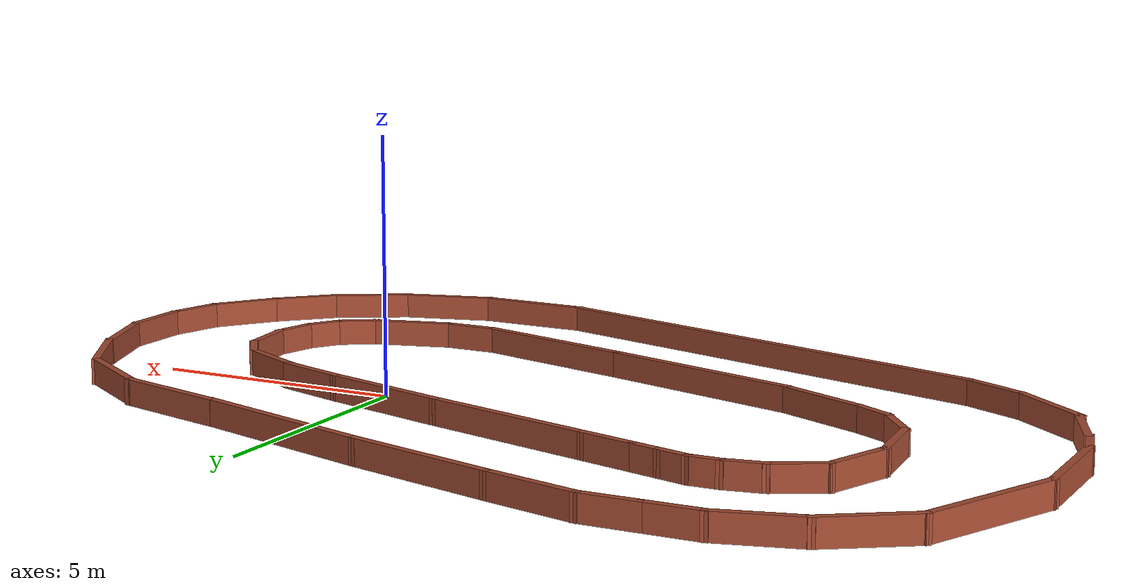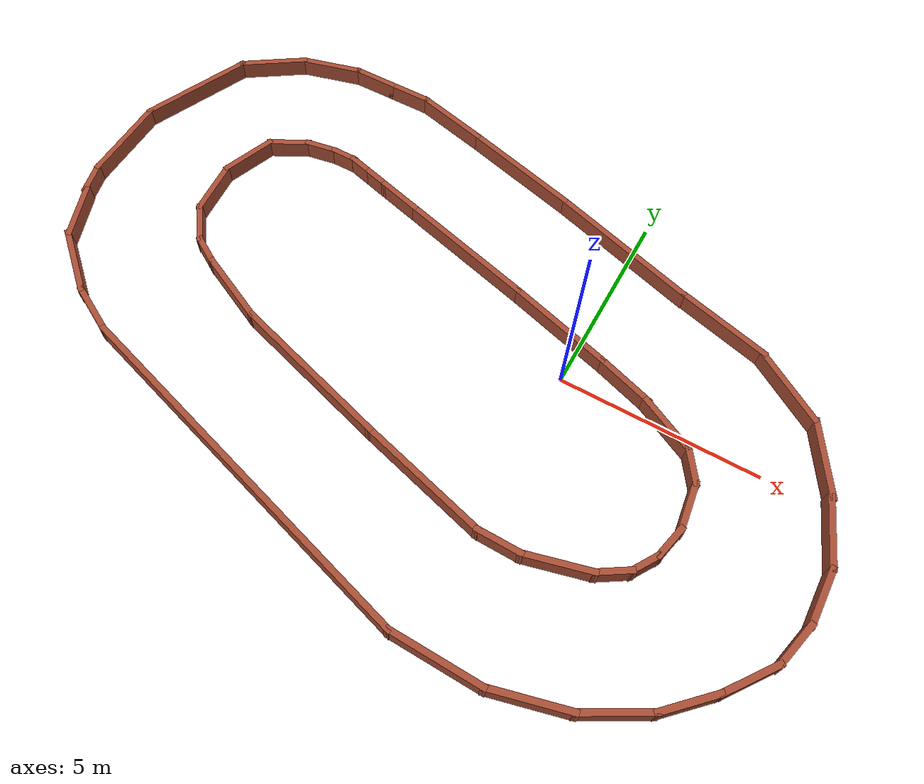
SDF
<?xml version='1.0'?>
<sdf version='1.6'>
  <model name='Race'>
    <pose frame=''>-3.18843 -0.711031 0 0 -0 0</pose>
    <link name='Wall_100'>
      <collision name='Wall_100_Collision'>
        <geometry>
          <box>
            <size>3.75 0.15 0.5</size>
          </box>
        </geometry>
        <pose frame=''>0 0 0.25 0 -0 0</pose>
      </collision>
      <visual name='Wall_100_Visual'>
        <pose frame=''>0 0 0.25 0 -0 0</pose>
        <geometry>
          <box>
            <size>3.75 0.15 0.5</size>
          </box>
        </geometry>
        <material>
          <script>
            <uri>file://media/materials/scripts/gazebo.material</uri>
            <name>Gazebo/Bricks</name>
          </script>
          <ambient>1 1 1 1</ambient>
        </material>
      </visual>
      <pose frame=''>-0.488069 2.63903 0 0 -0 2.8797</pose>
    </link>
    <link name='Wall_101'>
      <collision name='Wall_101_Collision'>
        <geometry>
          <box>
            <size>1.25 0.15 0.5</size>
          </box>
        </geometry>
        <pose frame=''>0 0 0.25 0 -0 0</pose>
      </collision>
      <visual name='Wall_101_Visual'>
        <pose frame=''>0 0 0.25 0 -0 0</pose>
        <geometry>
          <box>
            <size>1.25 0.15 0.5</size>
          </box>
        </geometry>
        <material>
          <script>
            <uri>file://media/materials/scripts/gazebo.material</uri>
            <name>Gazebo/Bricks</name>
          </script>
          <ambient>1 1 1 1</ambient>
        </material>
      </visual>
      <pose frame=''>-2.75807 3.24703 0 0 -0 2.88052</pose>
    </link>
    <link name='Wall_102'>
      <collision name='Wall_102_Collision'>
        <geometry>
          <box>
            <size>0.75 0.15 0.5</size>
          </box>
        </geometry>
        <pose frame=''>0 0 0.25 0 -0 0</pose>
      </collision>
      <visual name='Wall_102_Visual'>
        <pose frame=''>0 0 0.25 0 -0 0</pose>
        <geometry>
          <box>
            <size>0.75 0.15 0.5</size>
          </box>
        </geometry>
        <material>
          <script>
            <uri>file://media/materials/scripts/gazebo.material</uri>
            <name>Gazebo/Bricks</name>
          </script>
          <ambient>1 1 1 1</ambient>
        </material>
      </visual>
      <pose frame=''>-3.57907 3.46703 0 0 -0 2.87841</pose>
    </link>
    <link name='Wall_103'>
      <collision name='Wall_103_Collision'>
        <geometry>
          <box>
            <size>0.75 0.15 0.5</size>
          </box>
        </geometry>
        <pose frame=''>0 0 0.25 0 -0 0</pose>
      </collision>
      <visual name='Wall_103_Visual'>
        <pose frame=''>0 0 0.25 0 -0 0</pose>
        <geometry>
          <box>
            <size>0.75 0.15 0.5</size>
          </box>
        </geometry>
        <material>
          <script>
            <uri>file://media/materials/scripts/gazebo.material</uri>
            <name>Gazebo/Bricks</name>
          </script>
          <ambient>1 1 1 1</ambient>
        </material>
      </visual>
      <pose frame=''>-4.15857 3.62253 0 0 -0 2.88045</pose>
    </link>
    <link name='Wall_104'>
      <collision name='Wall_104_Collision'>
        <geometry>
          <box>
            <size>0.75 0.15 0.5</size>
          </box>
        </geometry>
        <pose frame=''>0 0 0.25 0 -0 0</pose>
      </collision>
      <visual name='Wall_104_Visual'>
        <pose frame=''>0 0 0.25 0 -0 0</pose>
        <geometry>
          <box>
            <size>0.75 0.15 0.5</size>
          </box>
        </geometry>
        <material>
          <script>
            <uri>file://media/materials/scripts/gazebo.material</uri>
            <name>Gazebo/Bricks</name>
          </script>
          <ambient>1 1 1 1</ambient>
        </material>
      </visual>
      <pose frame=''>-4.74857 3.70003 0 0 -0 3.14159</pose>
    </link>
    <link name='Wall_105'>
      <collision name='Wall_105_Collision'>
        <geometry>
          <box>
            <size>0.91106 0.15 0.5</size>
          </box>
        </geometry>
        <pose frame=''>0 0 0.25 0 -0 0</pose>
      </collision>
      <visual name='Wall_105_Visual'>
        <pose frame=''>0 0 0.25 0 -0 0</pose>
        <geometry>
          <box>
            <size>0.91106 0.15 0.5</size>
          </box>
        </geometry>
        <material>
          <script>
            <uri>file://media/materials/scripts/gazebo.material</uri>
            <name>Gazebo/Bricks</name>
          </script>
          <ambient>1 1 1 1</ambient>
        </material>
      </visual>
      <pose frame=''>-5.42357 3.63453 0 0 0 -2.96867</pose>
    </link>
    <link name='Wall_38'>
      <collision name='Wall_38_Collision'>
        <geometry>
          <box>
            <size>1.25 0.15 0.5</size>
          </box>
        </geometry>
        <pose frame=''>0 0 0.25 0 -0 0</pose>
      </collision>
      <visual name='Wall_38_Visual'>
        <pose frame=''>0 0 0.25 0 -0 0</pose>
        <geometry>
          <box>
            <size>1.25 0.15 0.5</size>
          </box>
        </geometry>
        <material>
          <script>
            <uri>file://media/materials/scripts/gazebo.material</uri>
            <name>Gazebo/Bricks</name>
          </script>
          <ambient>1 1 1 1</ambient>
        </material>
      </visual>
      <pose frame=''>10.0479 -2.61447 0 0 -0 1.30885</pose>
    </link>
    <link name='Wall_40'>
      <collision name='Wall_40_Collision'>
        <geometry>
          <box>
            <size>1.5 0.15 0.5</size>
          </box>
        </geometry>
        <pose frame=''>0 0 0.25 0 -0 0</pose>
      </collision>
      <visual name='Wall_40_Visual'>
        <pose frame=''>0 0 0.25 0 -0 0</pose>
        <geometry>
          <box>
            <size>1.5 0.15 0.5</size>
          </box>
        </geometry>
        <material>
          <script>
            <uri>file://media/materials/scripts/gazebo.material</uri>
            <name>Gazebo/Bricks</name>
          </script>
          <ambient>1 1 1 1</ambient>
        </material>
      </visual>
      <pose frame=''>10.1904 -1.40797 0 0 -0 1.5708</pose>
    </link>
    <link name='Wall_41'>
      <collision name='Wall_41_Collision'>
        <geometry>
          <box>
            <size>1.78576 0.15 0.5</size>
          </box>
        </geometry>
        <pose frame=''>0 0 0.25 0 -0 0</pose>
      </collision>
      <visual name='Wall_41_Visual'>
        <pose frame=''>0 0 0.25 0 -0 0</pose>
        <geometry>
          <box>
            <size>1.78576 0.15 0.5</size>
          </box>
        </geometry>
        <material>
          <script>
            <uri>file://media/materials/scripts/gazebo.material</uri>
            <name>Gazebo/Bricks</name>
          </script>
          <ambient>1 1 1 1</ambient>
        </material>
      </visual>
      <pose frame=''>9.91575 0.037406 0 0 -0 1.9133</pose>
    </link>
    <link name='Wall_42'>
      <collision name='Wall_42_Collision'>
        <geometry>
          <box>
            <size>1.99987 0.15 0.5</size>
          </box>
        </geometry>
        <pose frame=''>0 0 0.25 0 -0 0</pose>
      </collision>
      <visual name='Wall_42_Visual'>
        <pose frame=''>0 0 0.25 0 -0 0</pose>
        <geometry>
          <box>
            <size>1.99987 0.15 0.5</size>
          </box>
        </geometry>
        <material>
          <script>
            <uri>file://media/materials/scripts/gazebo.material</uri>
            <name>Gazebo/Bricks</name>
          </script>
          <ambient>1 1 1 1</ambient>
        </material>
      </visual>
      <pose frame=''>9.21375 1.60878 0 0 -0 2.09443</pose>
    </link>
    <link name='Wall_43'>
      <collision name='Wall_43_Collision'>
        <geometry>
          <box>
            <size>2.10349 0.15 0.5</size>
          </box>
        </geometry>
        <pose frame=''>0 0 0.25 0 -0 0</pose>
      </collision>
      <visual name='Wall_43_Visual'>
        <pose frame=''>0 0 0.25 0 -0 0</pose>
        <geometry>
          <box>
            <size>2.10349 0.15 0.5</size>
          </box>
        </geometry>
        <material>
          <script>
            <uri>file://media/materials/scripts/gazebo.material</uri>
            <name>Gazebo/Bricks</name>
          </script>
          <ambient>1 1 1 1</ambient>
        </material>
      </visual>
      <pose frame=''>7.89748 2.94264 0 0 -0 2.56455</pose>
    </link>
    <link name='Wall_44'>
      <collision name='Wall_44_Collision'>
        <geometry>
          <box>
            <size>2.50001 0.15 0.5</size>
          </box>
        </geometry>
        <pose frame=''>0 0 0.25 0 -0 0</pose>
      </collision>
      <visual name='Wall_44_Visual'>
        <pose frame=''>0 0 0.25 0 -0 0</pose>
        <geometry>
          <box>
            <size>2.50001 0.15 0.5</size>
          </box>
        </geometry>
        <material>
          <script>
            <uri>file://media/materials/scripts/gazebo.material</uri>
            <name>Gazebo/Bricks</name>
          </script>
          <ambient>1 1 1 1</ambient>
        </material>
      </visual>
      <pose frame=''>5.97907 3.77949 0 0 -0 2.87989</pose>
    </link>
    <link name='Wall_45'>
      <collision name='Wall_45_Collision'>
        <geometry>
          <box>
            <size>4.09779 0.15 0.5</size>
          </box>
        </geometry>
        <pose frame=''>0 0 0.25 0 -0 0</pose>
      </collision>
      <visual name='Wall_45_Visual'>
        <pose frame=''>0 0 0.25 0 -0 0</pose>
        <geometry>
          <box>
            <size>4.09779 0.15 0.5</size>
          </box>
        </geometry>
        <material>
          <script>
            <uri>file://media/materials/scripts/gazebo.material</uri>
            <name>Gazebo/Bricks</name>
          </script>
          <ambient>1 1 1 1</ambient>
        </material>
      </visual>
      <pose frame=''>2.9211 4.66012 0 0 -0 2.84514</pose>
    </link>
    <link name='Wall_46'>
      <collision name='Wall_46_Collision'>
        <geometry>
          <box>
            <size>3.25 0.15 0.5</size>
          </box>
        </geometry>
        <pose frame=''>0 0 0.25 0 -0 0</pose>
      </collision>
      <visual name='Wall_46_Visual'>
        <pose frame=''>0 0 0.25 0 -0 0</pose>
        <geometry>
          <box>
            <size>3.25 0.15 0.5</size>
          </box>
        </geometry>
        <material>
          <script>
            <uri>file://media/materials/scripts/gazebo.material</uri>
            <name>Gazebo/Bricks</name>
          </script>
          <ambient>1 1 1 1</ambient>
        </material>
      </visual>
      <pose frame=''>-0.463627 5.63789 0 0 -0 2.87977</pose>
    </link>
    <link name='Wall_49'>
      <collision name='Wall_49_Collision'>
        <geometry>
          <box>
            <size>1.91771 0.15 0.5</size>
          </box>
        </geometry>
        <pose frame=''>0 0 0.25 0 -0 0</pose>
      </collision>
      <visual name='Wall_49_Visual'>
        <pose frame=''>0 0 0.25 0 -0 0</pose>
        <geometry>
          <box>
            <size>1.91771 0.15 0.5</size>
          </box>
        </geometry>
        <material>
          <script>
            <uri>file://media/materials/scripts/gazebo.material</uri>
            <name>Gazebo/Bricks</name>
          </script>
          <ambient>1 1 1 1</ambient>
        </material>
      </visual>
      <pose frame=''>-8.29807 5.59047 0 0 0 -2.54365</pose>
    </link>
    <link name='Wall_50'>
      <collision name='Wall_50_Collision'>
        <geometry>
          <box>
            <size>3.12628 0.15 0.5</size>
          </box>
        </geometry>
        <pose frame=''>0 0 0.25 0 -0 0</pose>
      </collision>
      <visual name='Wall_50_Visual'>
        <pose frame=''>0 0 0.25 0 -0 0</pose>
        <geometry>
          <box>
            <size>3.12628 0.15 0.5</size>
          </box>
        </geometry>
        <material>
          <script>
            <uri>file://media/materials/scripts/gazebo.material</uri>
            <name>Gazebo/Bricks</name>
          </script>
          <ambient>1 1 1 1</ambient>
        </material>
      </visual>
      <pose frame=''>-9.60827 3.72233 0 0 0 -1.97094</pose>
    </link>
    <link name='Wall_51'>
      <collision name='Wall_51_Collision'>
        <geometry>
          <box>
            <size>2.4029 0.15 0.5</size>
          </box>
        </geometry>
        <pose frame=''>0 0 0.25 0 -0 0</pose>
      </collision>
      <visual name='Wall_51_Visual'>
        <pose frame=''>0 0 0.25 0 -0 0</pose>
        <geometry>
          <box>
            <size>2.4029 0.15 0.5</size>
          </box>
        </geometry>
        <material>
          <script>
            <uri>file://media/materials/scripts/gazebo.material</uri>
            <name>Gazebo/Bricks</name>
          </script>
          <ambient>1 1 1 1</ambient>
        </material>
      </visual>
      <pose frame=''>-10.1788 1.22533 0 0 0 -1.56263</pose>
    </link>
    <link name='Wall_54'>
      <collision name='Wall_54_Collision'>
        <geometry>
          <box>
            <size>10.1254 0.15 0.5</size>
          </box>
        </geometry>
        <pose frame=''>0 0 0.25 0 -0 0</pose>
      </collision>
      <visual name='Wall_54_Visual'>
        <pose frame=''>0 0 0.25 0 -0 0</pose>
        <geometry>
          <box>
            <size>10.1254 0.15 0.5</size>
          </box>
        </geometry>
        <material>
          <script>
            <uri>file://media/materials/scripts/gazebo.material</uri>
            <name>Gazebo/Bricks</name>
          </script>
          <ambient>1 1 1 1</ambient>
        </material>
      </visual>
      <pose frame=''>-2.07039 -5.10617 0 0 0 -0.277255</pose>
    </link>
    <link name='Wall_55'>
      <collision name='Wall_55_Collision'>
        <geometry>
          <box>
            <size>2.37764 0.15 0.5</size>
          </box>
        </geometry>
        <pose frame=''>0 0 0.25 0 -0 0</pose>
      </collision>
      <visual name='Wall_55_Visual'>
        <pose frame=''>0 0 0.25 0 -0 0</pose>
        <geometry>
          <box>
            <size>2.37764 0.15 0.5</size>
          </box>
        </geometry>
        <material>
          <script>
            <uri>file://media/materials/scripts/gazebo.material</uri>
            <name>Gazebo/Bricks</name>
          </script>
          <ambient>1 1 1 1</ambient>
        </material>
      </visual>
      <pose frame=''>3.84061 -6.48667 0 0 0 -0.013731</pose>
    </link>
    <link name='Wall_56'>
      <collision name='Wall_56_Collision'>
        <geometry>
          <box>
            <size>2 0.15 0.5</size>
          </box>
        </geometry>
        <pose frame=''>0 0 0.25 0 -0 0</pose>
      </collision>
      <visual name='Wall_56_Visual'>
        <pose frame=''>0 0 0.25 0 -0 0</pose>
        <geometry>
          <box>
            <size>2 0.15 0.5</size>
          </box>
        </geometry>
        <material>
          <script>
            <uri>file://media/materials/scripts/gazebo.material</uri>
            <name>Gazebo/Bricks</name>
          </script>
          <ambient>1 1 1 1</ambient>
        </material>
      </visual>
      <pose frame=''>5.84793 -6.26247 0 0 -0 0.261891</pose>
    </link>
    <link name='Wall_57'>
      <collision name='Wall_57_Collision'>
        <geometry>
          <box>
            <size>1.75 0.15 0.5</size>
          </box>
        </geometry>
        <pose frame=''>0 0 0.25 0 -0 0</pose>
      </collision>
      <visual name='Wall_57_Visual'>
        <pose frame=''>0 0 0.25 0 -0 0</pose>
        <geometry>
          <box>
            <size>1.75 0.15 0.5</size>
          </box>
        </geometry>
        <material>
          <script>
            <uri>file://media/materials/scripts/gazebo.material</uri>
            <name>Gazebo/Bricks</name>
          </script>
          <ambient>1 1 1 1</ambient>
        </material>
      </visual>
      <pose frame=''>7.43393 -5.62297 0 0 -0 0.523799</pose>
    </link>
    <link name='Wall_58'>
      <collision name='Wall_58_Collision'>
        <geometry>
          <box>
            <size>1.5 0.15 0.5</size>
          </box>
        </geometry>
        <pose frame=''>0 0 0.25 0 -0 0</pose>
      </collision>
      <visual name='Wall_58_Visual'>
        <pose frame=''>0 0 0.25 0 -0 0</pose>
        <geometry>
          <box>
            <size>1.5 0.15 0.5</size>
          </box>
        </geometry>
        <material>
          <script>
            <uri>file://media/materials/scripts/gazebo.material</uri>
            <name>Gazebo/Bricks</name>
          </script>
          <ambient>1 1 1 1</ambient>
        </material>
      </visual>
      <pose frame=''>8.60393 -4.74547 0 0 -0 0.785398</pose>
    </link>
    <link name='Wall_59'>
      <collision name='Wall_59_Collision'>
        <geometry>
          <box>
            <size>1.54297 0.15 0.5</size>
          </box>
        </geometry>
        <pose frame=''>0 0 0.25 0 -0 0</pose>
      </collision>
      <visual name='Wall_59_Visual'>
        <pose frame=''>0 0 0.25 0 -0 0</pose>
        <geometry>
          <box>
            <size>1.54297 0.15 0.5</size>
          </box>
        </geometry>
        <material>
          <script>
            <uri>file://media/materials/scripts/gazebo.material</uri>
            <name>Gazebo/Bricks</name>
          </script>
          <ambient>1 1 1 1</ambient>
        </material>
      </visual>
      <pose frame=''>9.49343 -3.70697 0 0 -0 0.937352</pose>
    </link>
    <link name='Wall_69'>
      <collision name='Wall_69_Collision'>
        <geometry>
          <box>
            <size>1.18896 0.15 0.5</size>
          </box>
        </geometry>
        <pose frame=''>0 0 0.25 0 -0 0</pose>
      </collision>
      <visual name='Wall_69_Visual'>
        <pose frame=''>0 0 0.25 0 -0 0</pose>
        <geometry>
          <box>
            <size>1.18896 0.15 0.5</size>
          </box>
        </geometry>
        <material>
          <script>
            <uri>file://media/materials/scripts/gazebo.material</uri>
            <name>Gazebo/Bricks</name>
          </script>
          <ambient>1 1 1 1</ambient>
        </material>
      </visual>
      <pose frame=''>-6.25457 3.32053 0 0 0 -2.64263</pose>
    </link>
    <link name='Wall_70'>
      <collision name='Wall_70_Collision'>
        <geometry>
          <box>
            <size>1.53879 0.15 0.5</size>
          </box>
        </geometry>
        <pose frame=''>0 0 0.25 0 -0 0</pose>
      </collision>
      <visual name='Wall_70_Visual'>
        <pose frame=''>0 0 0.25 0 -0 0</pose>
        <geometry>
          <box>
            <size>1.53879 0.15 0.5</size>
          </box>
        </geometry>
        <material>
          <script>
            <uri>file://media/materials/scripts/gazebo.material</uri>
            <name>Gazebo/Bricks</name>
          </script>
          <ambient>1 1 1 1</ambient>
        </material>
      </visual>
      <pose frame=''>-6.94507 2.41853 0 0 0 -1.91532</pose>
    </link>
    <link name='Wall_71'>
      <collision name='Wall_71_Collision'>
        <geometry>
          <box>
            <size>1.55272 0.15 0.5</size>
          </box>
        </geometry>
        <pose frame=''>0 0 0.25 0 -0 0</pose>
      </collision>
      <visual name='Wall_71_Visual'>
        <pose frame=''>0 0 0.25 0 -0 0</pose>
        <geometry>
          <box>
            <size>1.55272 0.15 0.5</size>
          </box>
        </geometry>
        <material>
          <script>
            <uri>file://media/materials/scripts/gazebo.material</uri>
            <name>Gazebo/Bricks</name>
          </script>
          <ambient>1 1 1 1</ambient>
        </material>
      </visual>
      <pose frame=''>-7.11157 1.06703 0 0 0 -1.47368</pose>
    </link>
    <link name='Wall_72'>
      <collision name='Wall_72_Collision'>
        <geometry>
          <box>
            <size>1.18096 0.15 0.5</size>
          </box>
        </geometry>
        <pose frame=''>0 0 0.25 0 -0 0</pose>
      </collision>
      <visual name='Wall_72_Visual'>
        <pose frame=''>0 0 0.25 0 -0 0</pose>
        <geometry>
          <box>
            <size>1.18096 0.15 0.5</size>
          </box>
        </geometry>
        <material>
          <script>
            <uri>file://media/materials/scripts/gazebo.material</uri>
            <name>Gazebo/Bricks</name>
          </script>
          <ambient>1 1 1 1</ambient>
        </material>
      </visual>
      <pose frame=''>-6.73807 -0.045969 0 0 0 -0.936222</pose>
    </link>
    <link name='Wall_73'>
      <collision name='Wall_73_Collision'>
        <geometry>
          <box>
            <size>0.916965 0.15 0.5</size>
          </box>
        </geometry>
        <pose frame=''>0 0 0.25 0 -0 0</pose>
      </collision>
      <visual name='Wall_73_Visual'>
        <pose frame=''>0 0 0.25 0 -0 0</pose>
        <geometry>
          <box>
            <size>0.916965 0.15 0.5</size>
          </box>
        </geometry>
        <material>
          <script>
            <uri>file://media/materials/scripts/gazebo.material</uri>
            <name>Gazebo/Bricks</name>
          </script>
          <ambient>1 1 1 1</ambient>
        </material>
      </visual>
      <pose frame=''>-6.10157 -0.654469 0 0 0 -0.529013</pose>
    </link>
    <link name='Wall_74'>
      <collision name='Wall_74_Collision'>
        <geometry>
          <box>
            <size>2.07957 0.15 0.5</size>
          </box>
        </geometry>
        <pose frame=''>0 0 0.25 0 -0 0</pose>
      </collision>
      <visual name='Wall_74_Visual'>
        <pose frame=''>0 0 0.25 0 -0 0</pose>
        <geometry>
          <box>
            <size>2.07957 0.15 0.5</size>
          </box>
        </geometry>
        <material>
          <script>
            <uri>file://media/materials/scripts/gazebo.material</uri>
            <name>Gazebo/Bricks</name>
          </script>
          <ambient>1 1 1 1</ambient>
        </material>
      </visual>
      <pose frame=''>-4.89307 -1.24897 0 0 0 -0.428643</pose>
    </link>
    <link name='Wall_75'>
      <collision name='Wall_75_Collision'>
        <geometry>
          <box>
            <size>4.37791 0.15 0.5</size>
          </box>
        </geometry>
        <pose frame=''>0 0 0.25 0 -0 0</pose>
      </collision>
      <visual name='Wall_75_Visual'>
        <pose frame=''>0 0 0.25 0 -0 0</pose>
        <geometry>
          <box>
            <size>4.37791 0.15 0.5</size>
          </box>
        </geometry>
        <material>
          <script>
            <uri>file://media/materials/scripts/gazebo.material</uri>
            <name>Gazebo/Bricks</name>
          </script>
          <ambient>1 1 1 1</ambient>
        </material>
      </visual>
      <pose frame=''>-1.98513 -2.23828 0 0 0 -0.282024</pose>
    </link>
    <link name='Wall_76'>
      <collision name='Wall_76_Collision'>
        <geometry>
          <box>
            <size>3.50013 0.15 0.5</size>
          </box>
        </geometry>
        <pose frame=''>0 0 0.25 0 -0 0</pose>
      </collision>
      <visual name='Wall_76_Visual'>
        <pose frame=''>0 0 0.25 0 -0 0</pose>
        <geometry>
          <box>
            <size>3.50013 0.15 0.5</size>
          </box>
        </geometry>
        <material>
          <script>
            <uri>file://media/materials/scripts/gazebo.material</uri>
            <name>Gazebo/Bricks</name>
          </script>
          <ambient>1 1 1 1</ambient>
        </material>
      </visual>
      <pose frame=''>1.66208 -3.2601 0 0 0 -0.261775</pose>
    </link>
    <link name='Wall_77'>
      <collision name='Wall_77_Collision'>
        <geometry>
          <box>
            <size>1.21015 0.15 0.5</size>
          </box>
        </geometry>
        <pose frame=''>0 0 0.25 0 -0 0</pose>
      </collision>
      <visual name='Wall_77_Visual'>
        <pose frame=''>0 0 0.25 0 -0 0</pose>
        <geometry>
          <box>
            <size>1.21015 0.15 0.5</size>
          </box>
        </geometry>
        <material>
          <script>
            <uri>file://media/materials/scripts/gazebo.material</uri>
            <name>Gazebo/Bricks</name>
          </script>
          <ambient>1 1 1 1</ambient>
        </material>
      </visual>
      <pose frame=''>3.81137 -3.69728 0 0 0 -0.006955</pose>
    </link>
    <link name='Wall_78'>
      <collision name='Wall_78_Collision'>
        <geometry>
          <box>
            <size>1.74993 0.15 0.5</size>
          </box>
        </geometry>
        <pose frame=''>0 0 0.25 0 -0 0</pose>
      </collision>
      <visual name='Wall_78_Visual'>
        <pose frame=''>0 0 0.25 0 -0 0</pose>
        <geometry>
          <box>
            <size>1.74993 0.15 0.5</size>
          </box>
        </geometry>
        <material>
          <script>
            <uri>file://media/materials/scripts/gazebo.material</uri>
            <name>Gazebo/Bricks</name>
          </script>
          <ambient>1 1 1 1</ambient>
        </material>
      </visual>
      <pose frame=''>5.11443 -3.49397 0 0 -0 0.261649</pose>
    </link>
    <link name='Wall_79'>
      <collision name='Wall_79_Collision'>
        <geometry>
          <box>
            <size>0.931879 0.15 0.5</size>
          </box>
        </geometry>
        <pose frame=''>0 0 0.25 0 -0 0</pose>
      </collision>
      <visual name='Wall_79_Visual'>
        <pose frame=''>0 0 0.25 0 -0 0</pose>
        <geometry>
          <box>
            <size>0.931879 0.15 0.5</size>
          </box>
        </geometry>
        <material>
          <script>
            <uri>file://media/materials/scripts/gazebo.material</uri>
            <name>Gazebo/Bricks</name>
          </script>
          <ambient>1 1 1 1</ambient>
        </material>
      </visual>
      <pose frame=''>6.21557 -3.07447 0 0 -0 0.574675</pose>
    </link>
    <link name='Wall_80'>
      <collision name='Wall_80_Collision'>
        <geometry>
          <box>
            <size>0.822887 0.15 0.5</size>
          </box>
        </geometry>
        <pose frame=''>0 0 0.25 0 -0 0</pose>
      </collision>
      <visual name='Wall_80_Visual'>
        <pose frame=''>0 0 0.25 0 -0 0</pose>
        <geometry>
          <box>
            <size>0.822887 0.15 0.5</size>
          </box>
        </geometry>
        <material>
          <script>
            <uri>file://media/materials/scripts/gazebo.material</uri>
            <name>Gazebo/Bricks</name>
          </script>
          <ambient>1 1 1 1</ambient>
        </material>
      </visual>
      <pose frame=''>6.72172 -2.57647 0 0 -0 1.0133</pose>
    </link>
    <link name='Wall_81'>
      <collision name='Wall_81_Collision'>
        <geometry>
          <box>
            <size>0.962527 0.15 0.5</size>
          </box>
        </geometry>
        <pose frame=''>0 0 0.25 0 -0 0</pose>
      </collision>
      <visual name='Wall_81_Visual'>
        <pose frame=''>0 0 0.25 0 -0 0</pose>
        <geometry>
          <box>
            <size>0.962527 0.15 0.5</size>
          </box>
        </geometry>
        <material>
          <script>
            <uri>file://media/materials/scripts/gazebo.material</uri>
            <name>Gazebo/Bricks</name>
          </script>
          <ambient>1 1 1 1</ambient>
        </material>
      </visual>
      <pose frame=''>6.99472 -1.89597 0 0 -0 1.33477</pose>
    </link>
    <link name='Wall_82'>
      <collision name='Wall_82_Collision'>
        <geometry>
          <box>
            <size>1.28172 0.15 0.5</size>
          </box>
        </geometry>
        <pose frame=''>0 0 0.25 0 -0 0</pose>
      </collision>
      <visual name='Wall_82_Visual'>
        <pose frame=''>0 0 0.25 0 -0 0</pose>
        <geometry>
          <box>
            <size>1.28172 0.15 0.5</size>
          </box>
        </geometry>
        <material>
          <script>
            <uri>file://media/materials/scripts/gazebo.material</uri>
            <name>Gazebo/Bricks</name>
          </script>
          <ambient>1 1 1 1</ambient>
        </material>
      </visual>
      <pose frame=''>7.02372 -0.938969 0 0 -0 1.6877</pose>
    </link>
    <link name='Wall_83'>
      <collision name='Wall_83_Collision'>
        <geometry>
          <box>
            <size>0.990701 0.15 0.5</size>
          </box>
        </geometry>
        <pose frame=''>0 0 0.25 0 -0 0</pose>
      </collision>
      <visual name='Wall_83_Visual'>
        <pose frame=''>0 0 0.25 0 -0 0</pose>
        <geometry>
          <box>
            <size>0.990701 0.15 0.5</size>
          </box>
        </geometry>
        <material>
          <script>
            <uri>file://media/materials/scripts/gazebo.material</uri>
            <name>Gazebo/Bricks</name>
          </script>
          <ambient>1 1 1 1</ambient>
        </material>
      </visual>
      <pose frame=''>6.72554 -0.026558 0 0 -0 2.15597</pose>
    </link>
    <link name='Wall_84'>
      <collision name='Wall_84_Collision'>
        <geometry>
          <box>
            <size>1.56593 0.15 0.5</size>
          </box>
        </geometry>
        <pose frame=''>0 0 0.25 0 -0 0</pose>
      </collision>
      <visual name='Wall_84_Visual'>
        <pose frame=''>0 0 0.25 0 -0 0</pose>
        <geometry>
          <box>
            <size>1.56593 0.15 0.5</size>
          </box>
        </geometry>
        <material>
          <script>
            <uri>file://media/materials/scripts/gazebo.material</uri>
            <name>Gazebo/Bricks</name>
          </script>
          <ambient>1 1 1 1</ambient>
        </material>
      </visual>
      <pose frame=''>5.82768 0.645853 0 0 -0 2.66942</pose>
    </link>
    <link name='Wall_85'>
      <collision name='Wall_85_Collision'>
        <geometry>
          <box>
            <size>1.58694 0.15 0.5</size>
          </box>
        </geometry>
        <pose frame=''>0 0 0.25 0 -0 0</pose>
      </collision>
      <visual name='Wall_85_Visual'>
        <pose frame=''>0 0 0.25 0 -0 0</pose>
        <geometry>
          <box>
            <size>1.58694 0.15 0.5</size>
          </box>
        </geometry>
        <material>
          <script>
            <uri>file://media/materials/scripts/gazebo.material</uri>
            <name>Gazebo/Bricks</name>
          </script>
          <ambient>1 1 1 1</ambient>
        </material>
      </visual>
      <pose frame=''>4.5499 1.19244 0 0 -0 2.82367</pose>
    </link>
    <link name='Wall_86'>
      <collision name='Wall_86_Collision'>
        <geometry>
          <box>
            <size>2.87336 0.15 0.5</size>
          </box>
        </geometry>
        <pose frame=''>0 0 0.25 0 -0 0</pose>
      </collision>
      <visual name='Wall_86_Visual'>
        <pose frame=''>0 0 0.25 0 -0 0</pose>
        <geometry>
          <box>
            <size>2.87336 0.15 0.5</size>
          </box>
        </geometry>
        <material>
          <script>
            <uri>file://media/materials/scripts/gazebo.material</uri>
            <name>Gazebo/Bricks</name>
          </script>
          <ambient>1 1 1 1</ambient>
        </material>
      </visual>
      <pose frame=''>2.55893 1.79503 0 0 -0 2.86037</pose>
    </link>
    <link name='Wall_88'>
      <collision name='Wall_88_Collision'>
        <geometry>
          <box>
            <size>1.75 0.15 0.5</size>
          </box>
        </geometry>
        <pose frame=''>0 0 0.25 0 -0 0</pose>
      </collision>
      <visual name='Wall_88_Visual'>
        <pose frame=''>0 0 0.25 0 -0 0</pose>
        <geometry>
          <box>
            <size>1.75 0.15 0.5</size>
          </box>
        </geometry>
        <material>
          <script>
            <uri>file://media/materials/scripts/gazebo.material</uri>
            <name>Gazebo/Bricks</name>
          </script>
          <ambient>1 1 1 1</ambient>
        </material>
      </visual>
      <pose frame=''>-6.79457 6.29503 0 0 -0 0.261649</pose>
    </link>
    <link name='Wall_89'>
      <collision name='Wall_89_Collision'>
        <geometry>
          <box>
            <size>1.25 0.15 0.5</size>
          </box>
        </geometry>
        <pose frame=''>0 0 0.25 0 -0 0</pose>
      </collision>
      <visual name='Wall_89_Visual'>
        <pose frame=''>0 0 0.25 0 -0 0</pose>
        <geometry>
          <box>
            <size>1.25 0.15 0.5</size>
          </box>
        </geometry>
        <material>
          <script>
            <uri>file://media/materials/scripts/gazebo.material</uri>
            <name>Gazebo/Bricks</name>
          </script>
          <ambient>1 1 1 1</ambient>
        </material>
      </visual>
      <pose frame=''>-5.47157 6.50203 0 0 -0 0</pose>
    </link>
    <link name='Wall_90'>
      <collision name='Wall_90_Collision'>
        <geometry>
          <box>
            <size>1.25 0.15 0.5</size>
          </box>
        </geometry>
        <pose frame=''>0 0 0.25 0 -0 0</pose>
      </collision>
      <visual name='Wall_90_Visual'>
        <pose frame=''>0 0 0.25 0 -0 0</pose>
        <geometry>
          <box>
            <size>1.25 0.15 0.5</size>
          </box>
        </geometry>
        <material>
          <script>
            <uri>file://media/materials/scripts/gazebo.material</uri>
            <name>Gazebo/Bricks</name>
          </script>
          <ambient>1 1 1 1</ambient>
        </material>
      </visual>
      <pose frame=''>-4.37157 6.50203 0 0 -0 0</pose>
    </link>
    <link name='Wall_91'>
      <collision name='Wall_91_Collision'>
        <geometry>
          <box>
            <size>2.06756 0.15 0.5</size>
          </box>
        </geometry>
        <pose frame=''>0 0 0.25 0 -0 0</pose>
      </collision>
      <visual name='Wall_91_Visual'>
        <pose frame=''>0 0 0.25 0 -0 0</pose>
        <geometry>
          <box>
            <size>2.06756 0.15 0.5</size>
          </box>
        </geometry>
        <material>
          <script>
            <uri>file://media/materials/scripts/gazebo.material</uri>
            <name>Gazebo/Bricks</name>
          </script>
          <ambient>1 1 1 1</ambient>
        </material>
      </visual>
      <pose frame=''>-2.89107 6.27053 0 0 0 -0.24384</pose>
    </link>
    <link name='Wall_94'>
      <collision name='Wall_94_Collision'>
        <geometry>
          <box>
            <size>1.56322 0.15 0.5</size>
          </box>
        </geometry>
        <pose frame=''>0 0 0.25 0 -0 0</pose>
      </collision>
      <visual name='Wall_94_Visual'>
        <pose frame=''>0 0 0.25 0 -0 0</pose>
        <geometry>
          <box>
            <size>1.56322 0.15 0.5</size>
          </box>
        </geometry>
        <material>
          <script>
            <uri>file://media/materials/scripts/gazebo.material</uri>
            <name>Gazebo/Bricks</name>
          </script>
          <ambient>1 1 1 1</ambient>
        </material>
      </visual>
      <pose frame=''>-9.68275 -1.30618 0 0 0 -1.19508</pose>
    </link>
    <link name='Wall_95'>
      <collision name='Wall_95_Collision'>
        <geometry>
          <box>
            <size>1.97386 0.15 0.5</size>
          </box>
        </geometry>
        <pose frame=''>0 0 0.25 0 -0 0</pose>
      </collision>
      <visual name='Wall_95_Visual'>
        <pose frame=''>0 0 0.25 0 -0 0</pose>
        <geometry>
          <box>
            <size>1.97386 0.15 0.5</size>
          </box>
        </geometry>
        <material>
          <script>
            <uri>file://media/materials/scripts/gazebo.material</uri>
            <name>Gazebo/Bricks</name>
          </script>
          <ambient>1 1 1 1</ambient>
        </material>
      </visual>
      <pose frame=''>-8.7601 -2.54974 0 0 0 -0.698208</pose>
    </link>
    <link name='Wall_96'>
      <collision name='Wall_96_Collision'>
        <geometry>
          <box>
            <size>1.48845 0.15 0.5</size>
          </box>
        </geometry>
        <pose frame=''>0 0 0.25 0 -0 0</pose>
      </collision>
      <visual name='Wall_96_Visual'>
        <pose frame=''>0 0 0.25 0 -0 0</pose>
        <geometry>
          <box>
            <size>1.48845 0.15 0.5</size>
          </box>
        </geometry>
        <material>
          <script>
            <uri>file://media/materials/scripts/gazebo.material</uri>
            <name>Gazebo/Bricks</name>
          </script>
          <ambient>1 1 1 1</ambient>
        </material>
      </visual>
      <pose frame=''>-7.46457 -3.43847 0 0 0 -0.468993</pose>
    </link>
    <link name='Wall_98'>
      <collision name='Wall_98_Collision'>
        <geometry>
          <box>
            <size>0.922127 0.15 0.5</size>
          </box>
        </geometry>
        <pose frame=''>0 0 0.25 0 -0 0</pose>
      </collision>
      <visual name='Wall_98_Visual'>
        <pose frame=''>0 0 0.25 0 -0 0</pose>
        <geometry>
          <box>
            <size>0.922127 0.15 0.5</size>
          </box>
        </geometry>
        <material>
          <script>
            <uri>file://media/materials/scripts/gazebo.material</uri>
            <name>Gazebo/Bricks</name>
          </script>
          <ambient>1 1 1 1</ambient>
        </material>
      </visual>
      <pose frame=''>-10.0734 -0.274971 0 0 -0 1.82258</pose>
    </link>
    <static>1</static>
  </model>
</sdf>
